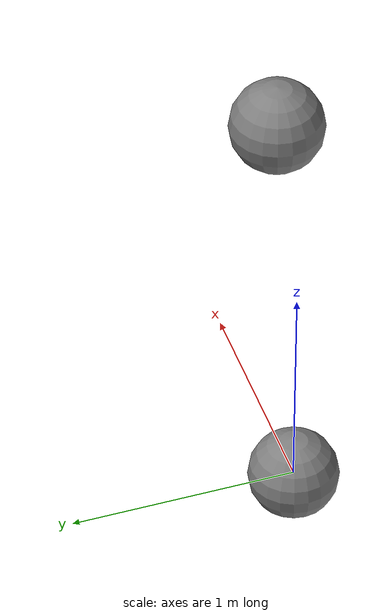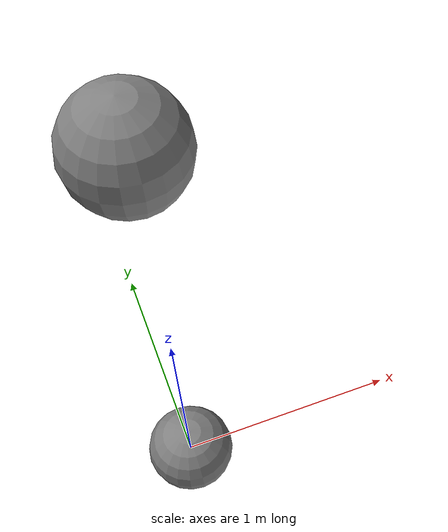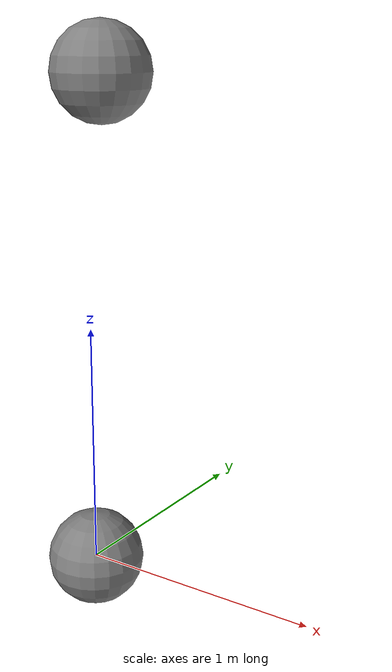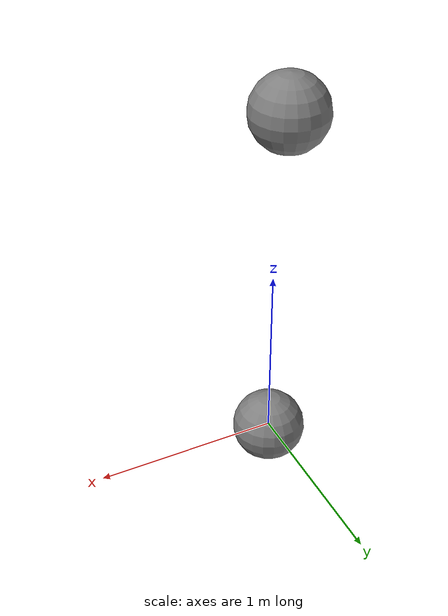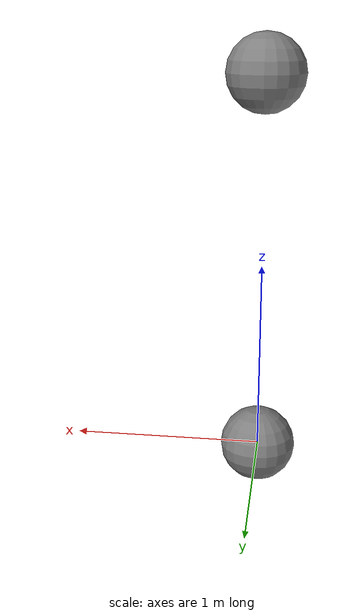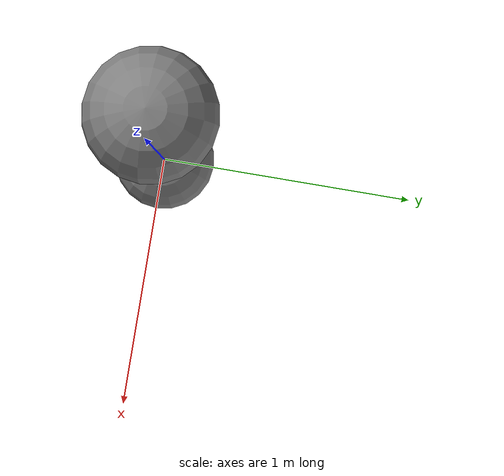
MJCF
<mujoco model="Ejemplo 7">

  <worldbody>

    <!-- En el mundo hay una bola FIJA en el origen -->
    <geom type="sphere" size="0.2"/>

    <!-- Bola libre a 2m de la bola del mundo -->
    <!-- Ya no está alineada en el eje z. La desplazamos un pelín
         hacia el lado positivo del eje y. Ahora la bola libre
         no conseguirá el equilibrio, y terminará cayendo al vacío -->
    <body pos="0 0.1 2">
      <geom type="sphere" size="0.2"/>
      <joint type="free"/>
    </body>

  </worldbody>
</mujoco>
